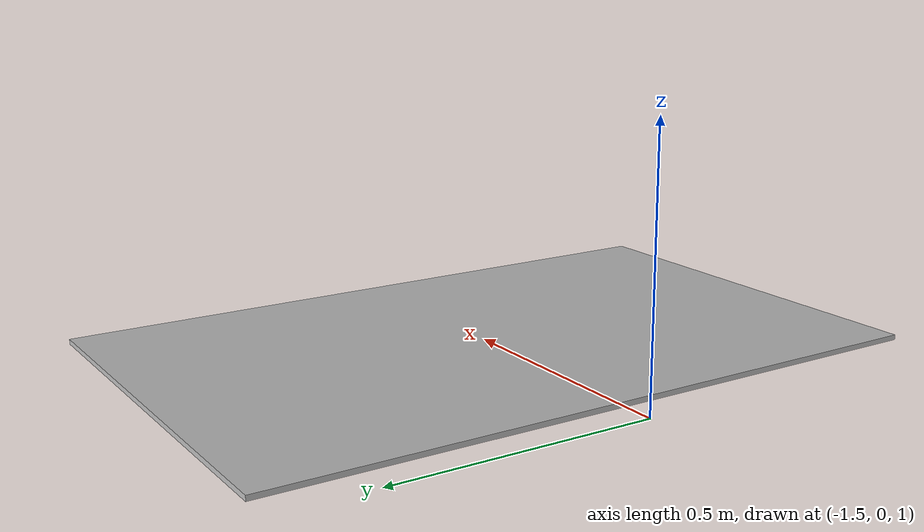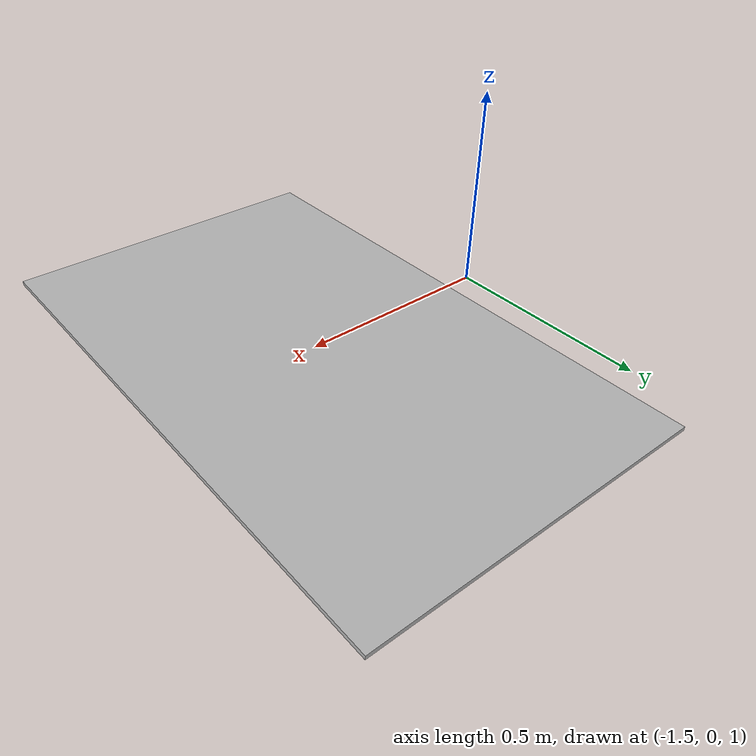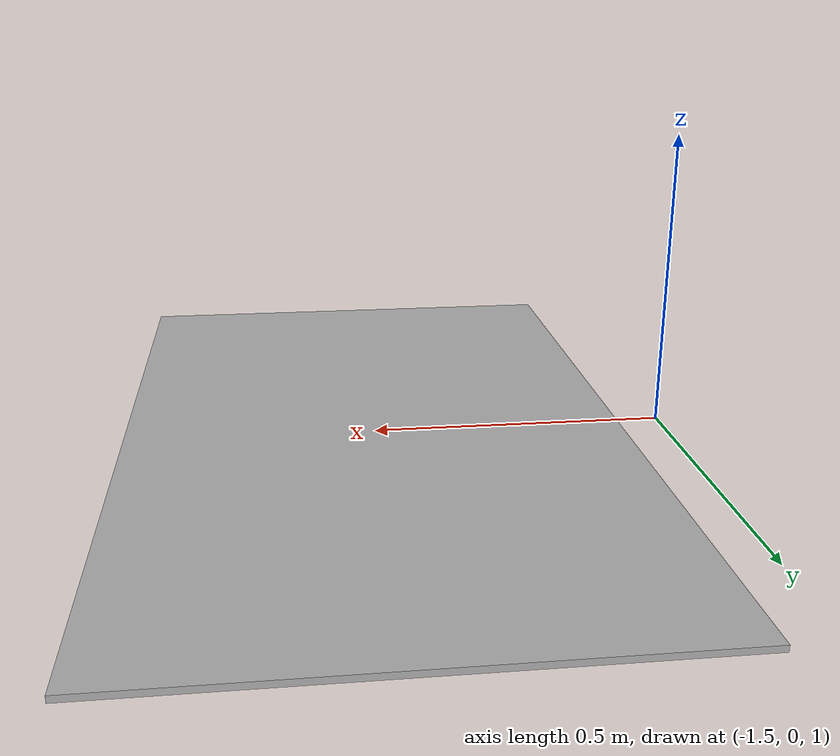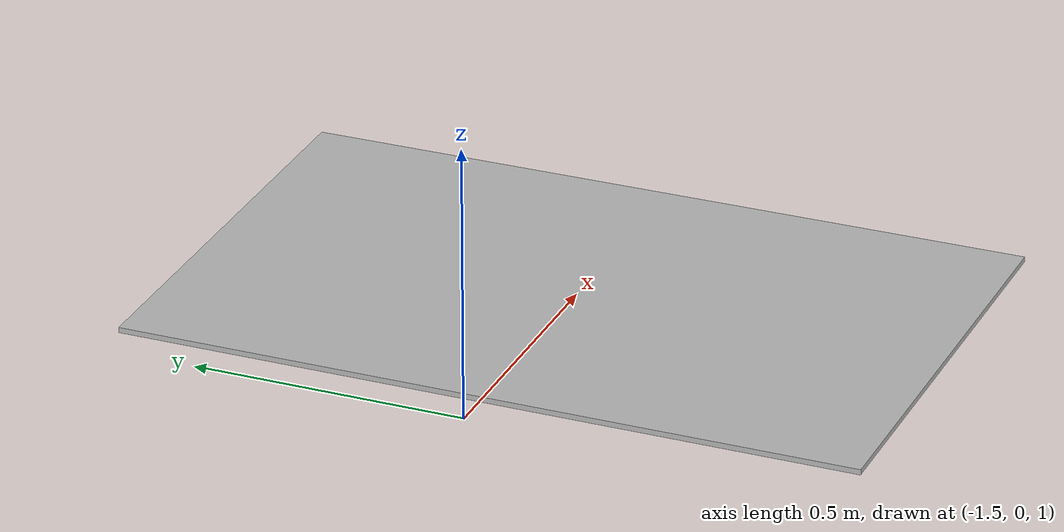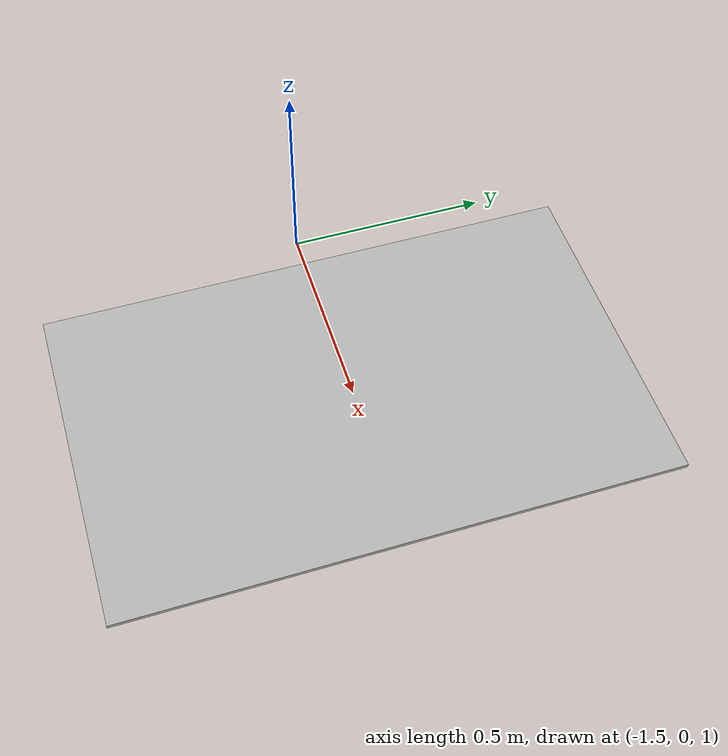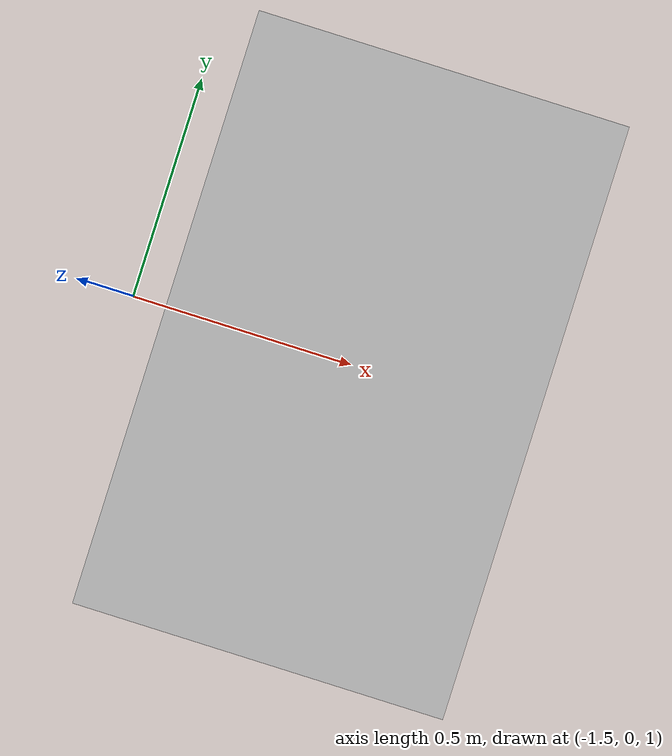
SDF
<?xml version="1.0" ?>
<sdf version="1.6">
  <model name="landing_pad_rover">
    <pose>-1.0 0.0 1.0 0.0 0.0 0.0</pose>
    <static>true</static>
    <link name="landing_pad_link">
      <inertial>
        <mass>0.5</mass>
        <inertia>
          <ixx>0.05</ixx>
          <ixy>0</ixy>
          <ixz>0</ixz>
          <iyy>0.05</iyy>
          <iyz>0</iyz>
          <izz>0.1</izz>
        </inertia>
      </inertial>
      <collision name="collision">
        <geometry>
          <box>
            <size>0.85 1.36 0.01</size>
          </box>
        </geometry>
        <surface> <!--add friction by spx-->
          <friction>
            <ode>
              <mu>1.0</mu>
              <mu2>1.0</mu2>
              <fdir1>0 0 1</fdir1>
              <slip1>0.0</slip1>
              <slip2>0.0</slip2>
            </ode>
          </friction>
          <contact>
            <ode>
              <min_depth>0.005</min_depth>
              <kp>1e8</kp>
            </ode>
          </contact>
        </surface>
      </collision>
      <visual name="visual">
        <geometry>
          <box>
            <size>0.85 1.36 0.01</size>
          </box>
        </geometry>
        <material>
          <script>
            <uri>model://landing_pad_rover/materials/scripts</uri>
	    <uri>model://landing_pad_rover/materials/textures</uri>
            <name>Cube/landing_pad_rover</name>
          </script>
        </material>
      </visual>
    </link>

  </model>
</sdf>
